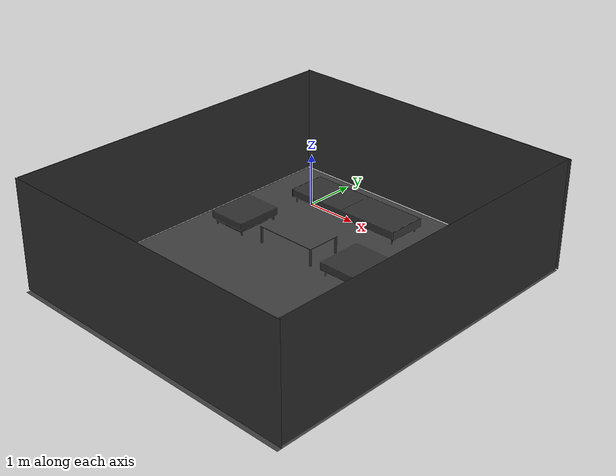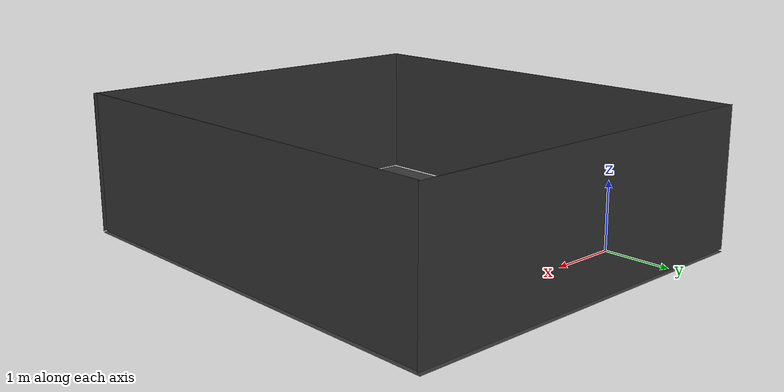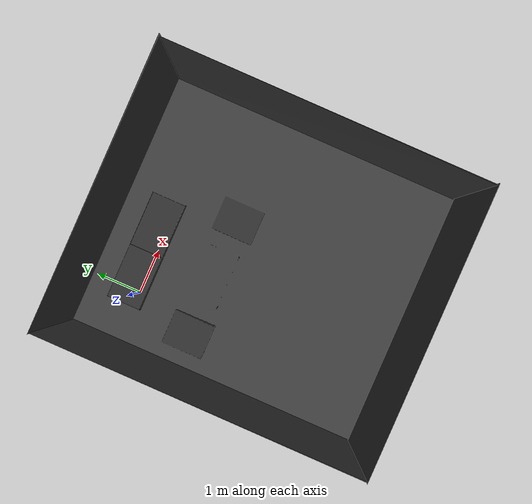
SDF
<?xml version="1.0" ?>
<sdf version="1.4">
  <model name="living_room">
    <static>true</static>
    <pose>0 0 0.001 0 0 0</pose>
    <link name="room">
      <collision name="collision">
        <geometry>
          <mesh>
            <uri>model://living_room/meshes/living_room_collision.dae</uri>
          </mesh>
        </geometry>
        <surface>
          <friction>
            <ode>
              <mu>0.99</mu>
              <mu2>0.99</mu2>
            </ode>
          </friction>
          <bounce/>
          <contact>
            <ode/>
          </contact>
        </surface>
        <max_contacts>100</max_contacts>
      </collision>
      <visual name="visual">
        <geometry>
          <mesh>
            <uri>model://living_room/meshes/living_room_visual.dae</uri>
          </mesh>
        </geometry>
        <cast_shadows>true</cast_shadows>
      </visual>
    </link>
  </model>
</sdf>
